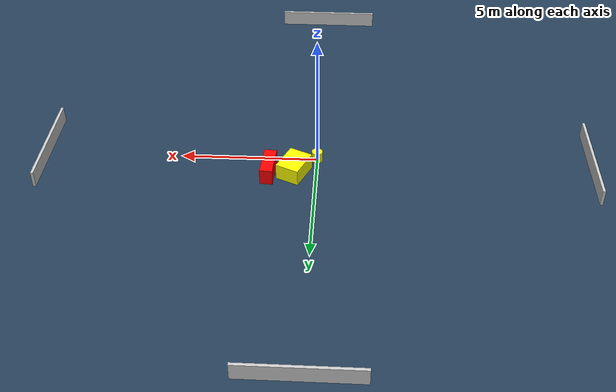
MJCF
<?xml version="1.0" ?>
<mujoco model="generated_environment">
  <option timestep="0.01" integrator="RK4" cone="elliptic"/>
  <default>
    <geom density="1"/>
  </default>
  <asset>
    <texture builtin="gradient" height="3072" name="skybox" rgb1="0.3 0.5 0.7" rgb2="0 0 0" type="skybox" width="512"/>
    <texture builtin="checker" height="300" name="groundplane" rgb1="0.2 0.3 0.4" rgb2="0.1 0.2 0.3" type="2d" width="300"/>
    <material name="groundplane" reflectance="0.2" texrepeat="5 5" texture="groundplane"/>
  </asset>
  <worldbody>
    <light dir="0 0 -1" directional="true" pos="0 0 1.5"/>
    <geom condim="3" friction="0.5 0.005 0.001" material="groundplane" name="floor" pos="0 0 0" size="0 0 0.05" type="plane"/>
    <body name="walls">
      <geom name="wall_1" condim="4" pos="-10.0 0.0 0.3" rgba="0.800000011920929 0.800000011920929 0.800000011920929 1.0" size="0.05 2.0 0.3" type="box"/>
      <geom name="wall_2" condim="4" pos="10.0 0.0 0.3" rgba="0.800000011920929 0.800000011920929 0.800000011920929 1.0" size="0.05 2.0 0.3" type="box"/>
      <geom name="wall_3" condim="4" pos="0.0 -10.0 0.3" rgba="0.800000011920929 0.800000011920929 0.800000011920929 1.0" size="2.0 0.05 0.3" type="box"/>
      <geom name="wall_4" condim="4" pos="0.0 10.0 0.3" rgba="0.800000011920929 0.800000011920929 0.800000011920929 1.0" size="2.0 0.05 0.3" type="box"/>
    </body>
    <body name="robot">
      <joint name="joint_x" type="slide" pos="0 0 0" axis="1 0 0"/>
      <joint name="joint_y" type="slide" pos="0 0 0" axis="0 1 0"/>
      <geom name="robot" type="cylinder" pos="0.0 0.0 0.2" size="0.2 0.2 0.0" mass="5.0" friction="1.0 0.005 0.0001" condim="4" rgba="1.0 1.0 0.0 1.0"/>
    </body>
    <body name="obstacle_1_movable">
      <geom name="obstacle_1_movable" condim="4" pos="0.8005949123672931 0.7800200822843869 0.3" euler="0 0 335.7117622134718" friction="0.0 0.005 0.001" rgba="1.0 1.0 0.0 1.0" size="0.4375329284914313 0.5663187483916973 0.3" type="box" mass="0.1"/>
      <joint type="free"/>
    </body>
    <body name="obstacle_2_static">
      <geom name="obstacle_2_static" condim="4" pos="1.7234325378790691 0.8556665671277858 0.3" euler="0 0 86.51677823321455" friction="0.0 0.005 0.001" rgba="1.0 0.0 0.0 1.0" size="0.6132336291770432 0.22869439421712134 0.3" type="box"/>
    </body>
  </worldbody>
  <actuator>
    <motor name="actuator_x" joint="joint_x" gear="1" ctrlrange="-1 1"/>
    <motor name="actuator_y" joint="joint_y" gear="1" ctrlrange="-1 1"/>
  </actuator>
</mujoco>
